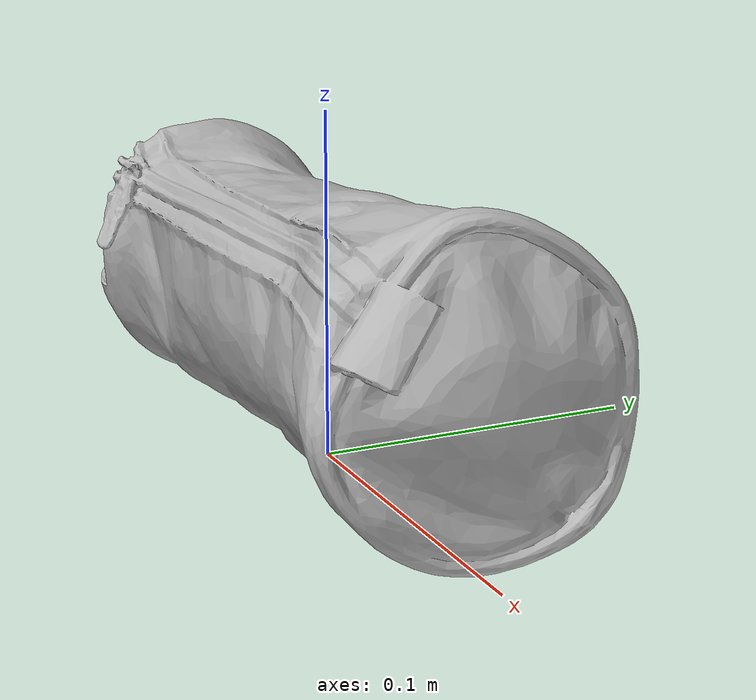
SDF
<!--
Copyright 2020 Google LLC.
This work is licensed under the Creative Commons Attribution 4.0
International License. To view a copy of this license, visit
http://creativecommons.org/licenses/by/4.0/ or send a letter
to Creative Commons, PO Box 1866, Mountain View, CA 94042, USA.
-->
<?xml version="1.0" ?>
<sdf version="1.6">
  <model name="Horses_in_Pink_Pencil_Case">
    <link name="link_0">
      <visual name="visual">
        <geometry>
          <mesh>
            <uri>meshes/model.obj</uri>
          </mesh>
        </geometry>
      </visual>
      <collision name="collision_0">
        <geometry>
          <mesh>
            <uri>meshes/model.obj</uri>
          </mesh>
        </geometry>
      </collision>
    </link>
  </model>
</sdf>
